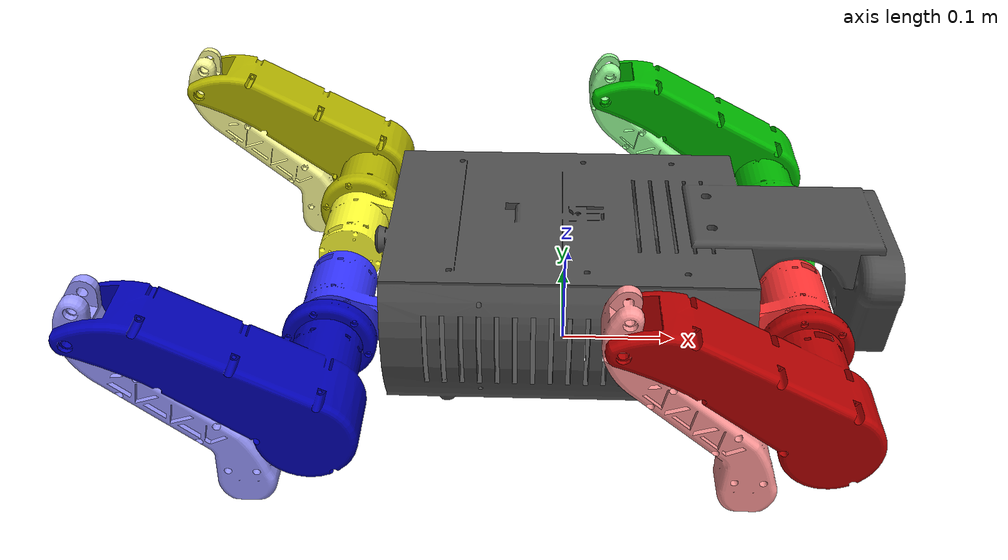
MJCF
<mujoco model="NXP_Jaguar">
  <compiler angle="radian"/>

  <asset>
    <mesh name="Base_body" content_type="model/stl" file="../meshes/Base_body.STL"/>
    <mesh name="Fr_coxa_roll" content_type="model/stl" file="../meshes/Fr_coxa_roll.STL"/>
    <mesh name="Fr_hip_pitch" content_type="model/stl" file="../meshes/Fr_hip_pitch.STL"/>
    <mesh name="Fr_tibia_pitch" content_type="model/stl" file="../meshes/Fr_tibia_pitch.STL"/>
    <mesh name="Fl_coxa_roll" content_type="model/stl" file="../meshes/Fl_coxa_roll.STL"/>
    <mesh name="Fl_hip_pitch" content_type="model/stl" file="../meshes/Fl_hip_pitch.STL"/>
    <mesh name="Fl_tibia_pitch" content_type="model/stl" file="../meshes/Fl_tibia_pitch.STL"/>
    <mesh name="Br_coxa_roll" content_type="model/stl" file="../meshes/Br_coxa_roll.STL"/>
    <mesh name="Br_hip_pitch" content_type="model/stl" file="../meshes/Br_hip_pitch.STL"/>
    <mesh name="Br_tibia_pitch" content_type="model/stl" file="../meshes/Br_tibia_pitch.STL"/>
    <mesh name="Bl_coxa_roll" content_type="model/stl" file="../meshes/Bl_coxa_roll.STL"/>
    <mesh name="Bl_hip_pitch" content_type="model/stl" file="../meshes/Bl_hip_pitch.STL"/>
    <mesh name="Bl_tibia_pitch" content_type="model/stl" file="../meshes/Bl_tibia_pitch.STL"/>
  </asset>

  <worldbody>
    <geom type="mesh" rgba="0.3 0.3 0.3 1" mesh="Base_body"/>
    <body name="Fr_coxa_link" pos="0.14 -0.0722 0.0755">
      <inertial pos="-0.04075 -0.01975 0" quat="0 0.707107 0 0.707107" mass="0.353" diaginertia="0.000359 0.000291 0.000259"/>
      <joint name="Fr_roll_joint" pos="0 0 0" axis="1 0 0" range="-0.4 0.4" actuatorfrcrange="-14 14"/>
      <geom type="mesh" rgba="1 0.2 0.2 1" mesh="Fr_coxa_roll"/>
      <body name="Fr_thigh_link" pos="0.053 -0.005 0">
        <inertial pos="-0.035579 -0.089273 0.026371" quat="0 0.886328 0 0.463058" mass="0.65" diaginertia="0.00349229 0.002555 0.00139771"/>
        <joint name="Fr_hip_pitch_joint" pos="0 0 0" axis="0 1 0" range="-3.14 3.14" actuatorfrcrange="-14 14"/>
        <geom type="mesh" rgba="0.7 0 0 1" mesh="Fr_hip_pitch"/>
        <body name="Fr_tibia_link" pos="-0.157 -0.0935 0.088">
          <inertial pos="0.060866 -0.017421 -0.080173" quat="0.666658 -0.235727 -0.235727 0.666658" mass="0.18" diaginertia="0.000726 0.000718529 4.14708e-05"/>
          <joint name="Fr_knee_joint" pos="0 0 0" axis="0 1 0" range="-0.1 2.8" actuatorfrcrange="-14 14"/>
          <geom type="mesh" rgba="1 0.6 0.6 1" mesh="Fr_tibia_pitch"/>
        </body>
      </body>
    </body>
    <body name="Fl_coxa_link" pos="0.14 0.0722 0.0755">
      <inertial pos="-0.04075 -0.01975 0" quat="0 0.707107 0 0.707107" mass="0.353" diaginertia="0.000309 0.000275 0.0002"/>
      <joint name="Fl_roll_joint" pos="0 0 0" axis="1 0 0" range="-0.4 0.4" actuatorfrcrange="-14 14"/>
      <geom type="mesh" rgba="0.2 1 0.2 1" mesh="Fl_coxa_roll"/>
      <body name="Fl_thigh_link" pos="0.053 -0.005 0">
        <inertial pos="-0.035334 0.08886 0.026193" quat="0 0.886484 0 0.46276" mass="0.65" diaginertia="0.00347027 0.002547 0.00137673"/>
        <joint name="Fl_hip_pitch_joint" pos="0 0 0" axis="0 1 0" range="-3.14 3.14" actuatorfrcrange="-14 14"/>
        <geom type="mesh" rgba="0 0.7 0 1" mesh="Fl_hip_pitch"/>
        <body name="Fl_tibia_link" pos="-0.157 0.0935 0.088">
          <inertial pos="0.060954 0.017516 -0.080316" quat="0.666573 -0.235968 -0.235968 0.666573" mass="0.18" diaginertia="0.000726 0.000717925 4.10753e-05"/>
          <joint name="Fl_knee_joint" pos="0 0 0" axis="0 1 0" range="-0.1 2.8" actuatorfrcrange="-14 14"/>
          <geom type="mesh" rgba="0.6 1 0.6 1" mesh="Fl_tibia_pitch"/>
        </body>
      </body>
    </body>
    <body name="Br_coxa_link" pos="-0.14 -0.0722 0.0755">
      <inertial pos="-0.04248 0.013241 -7.9e-05" quat="0 0.707107 0 0.707107" mass="0.353" diaginertia="0.000311 0.000302 0.000175"/>
      <joint name="Br_roll_joint" pos="0 0 0" axis="1 0 0" range="-0.4 0.4" actuatorfrcrange="-14 14"/>
      <geom type="mesh" rgba="0.2 0.2 1 1" mesh="Br_coxa_roll"/>
      <body name="Br_thigh_link" pos="-0.053 -0.005 0">
        <inertial pos="-0.035579 -0.089273 0.026371" quat="0 0.886291 0 0.463128" mass="0.65" diaginertia="0.00347458 0.002545 0.00139042"/>
        <joint name="Br_hip_pitch_joint" pos="0 0 0" axis="0 1 0" range="-3.14 3.14" actuatorfrcrange="-14 14"/>
        <geom type="mesh" rgba="0 0 0.7 1" mesh="Br_hip_pitch"/>
        <body name="Br_tibia_link" pos="-0.157 -0.0935 0.088">
          <inertial pos="0.060866 -0.017421 -0.080173" quat="0.666658 -0.235727 -0.235727 0.666658" mass="0.18" diaginertia="0.000726 0.000718529 4.14708e-05"/>
          <joint name="Br_knee_joint" pos="0 0 0" axis="0 1 0" range="-0.1 2.8" actuatorfrcrange="-14 14"/>
          <geom type="mesh" rgba="0.6 0.6 1 1" mesh="Br_tibia_pitch"/>
        </body>
      </body>
    </body>
    <body name="Bl_coxa_link" pos="-0.14 0.0722 0.0755">
      <inertial pos="-0.042207 -0.013241 7.9e-05" quat="0 0.707107 0 0.707107" mass="0.353" diaginertia="0.000309 0.000275 0.0002"/>
      <joint name="Bl_roll_joint" pos="0 0 0" axis="1 0 0" range="-0.4 0.4" actuatorfrcrange="-14 14"/>
      <geom type="mesh" rgba="1 1 0.2 1" mesh="Bl_coxa_roll"/>
      <body name="Bl_thigh_link" pos="-0.053 -0.005 0">
        <inertial pos="-0.035334 0.08886 0.026193" quat="0 0.886484 0 0.46276" mass="0.65" diaginertia="0.00347027 0.002547 0.00137673"/>
        <joint name="Bl_hip_pitch_joint" pos="0 0 0" axis="0 1 0" range="-3.14 3.14" actuatorfrcrange="-14 14"/>
        <geom type="mesh" rgba="0.7 0.7 0 1" mesh="Bl_hip_pitch"/>
        <body name="Bl_tibia_link" pos="-0.157 0.0935 0.088">
          <inertial pos="0.060954 0.017516 -0.080316" quat="0.666573 -0.235968 -0.235968 0.666573" mass="0.18" diaginertia="0.000726 0.000717925 4.10753e-05"/>
          <joint name="Bl_knee_joint" pos="0 0 0" axis="0 1 0" range="-0.1 2.8" actuatorfrcrange="-14 14"/>
          <geom type="mesh" rgba="1 1 0.6 1" mesh="Bl_tibia_pitch"/>
        </body>
      </body>
    </body>
  </worldbody>
</mujoco>
